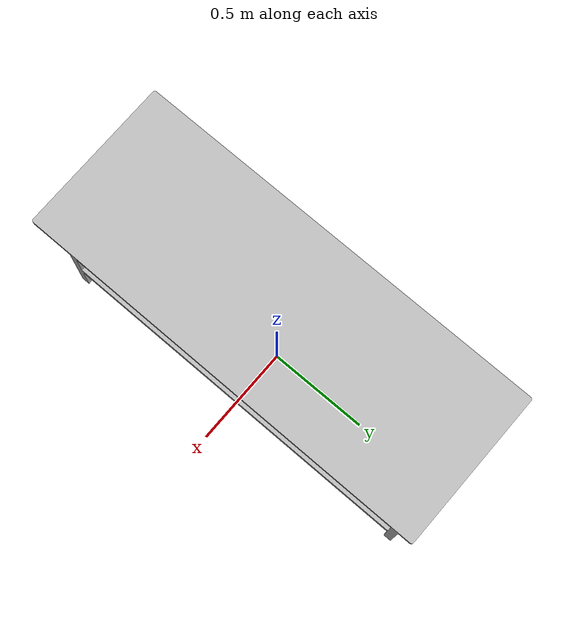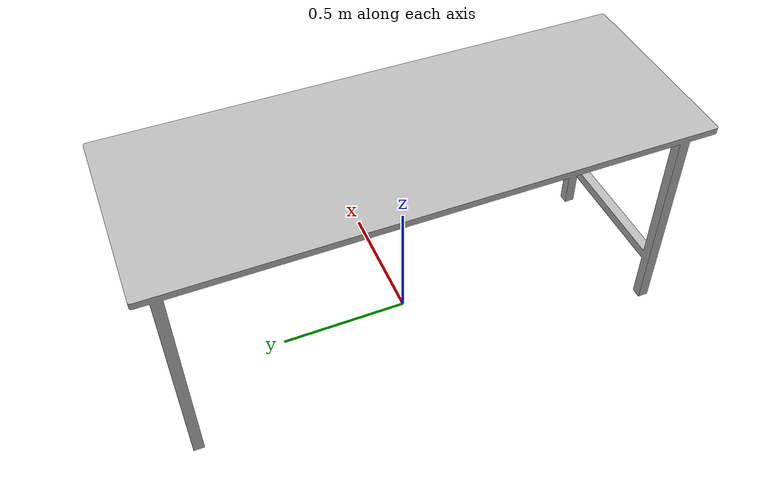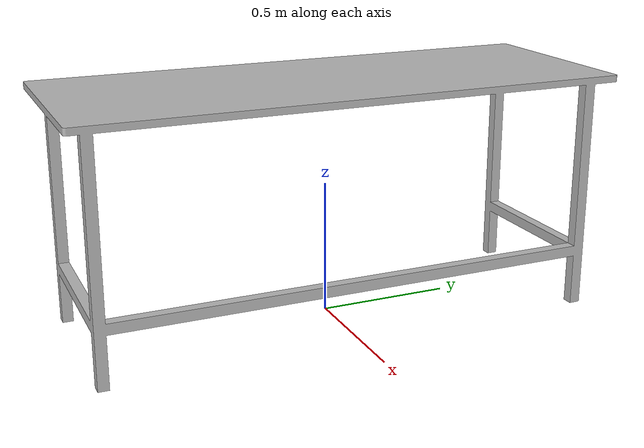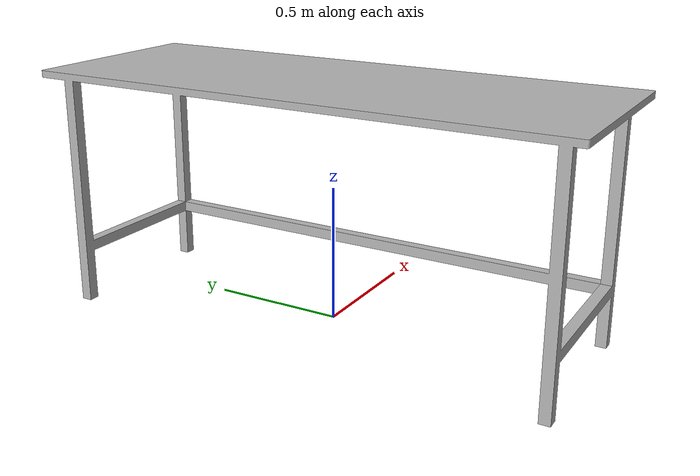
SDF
<?xml version="1.0" ?>
<sdf version="1.5">
  <model name="Table">
    <static>true</static>
    <link name="link">
      <visual name="visual">
        <geometry>
          <mesh>
            <uri>model://table/meshes/table.dae</uri>
          </mesh>
        </geometry>
      </visual>
      <!-- collision -->
      <collision name="collision">
        <geometry>
          <mesh>
            <uri>model://table/meshes/table.dae</uri>
          </mesh>
        </geometry>
        <surface>
          <friction>
            <ode>
              <mu>10</mu>
              <mu2>10</mu2>
            </ode>
          </friction>
        </surface>
      </collision>
    </link>
  </model>

</sdf>
